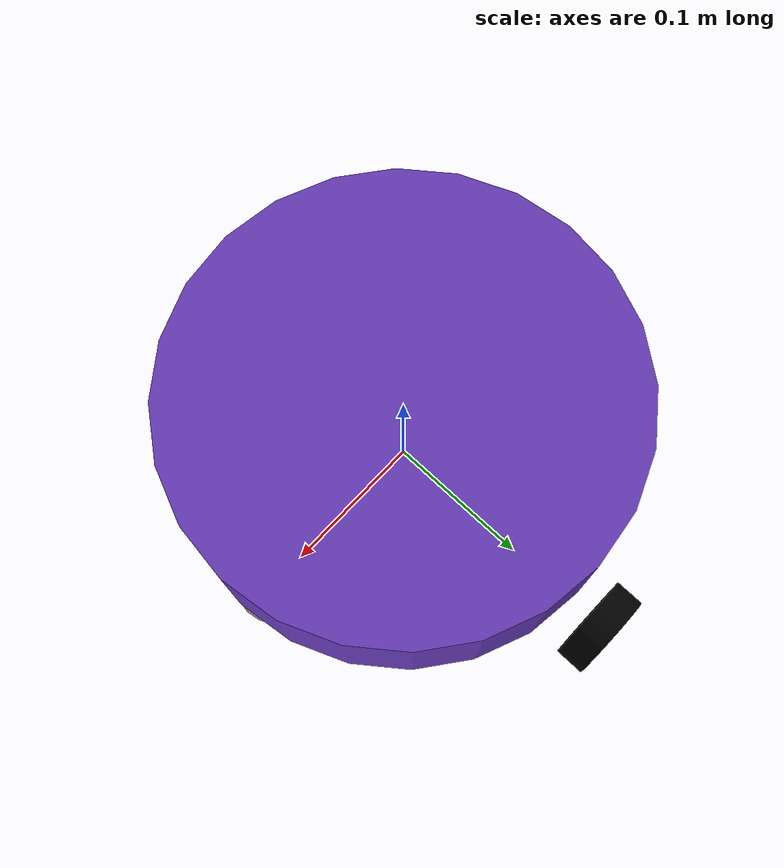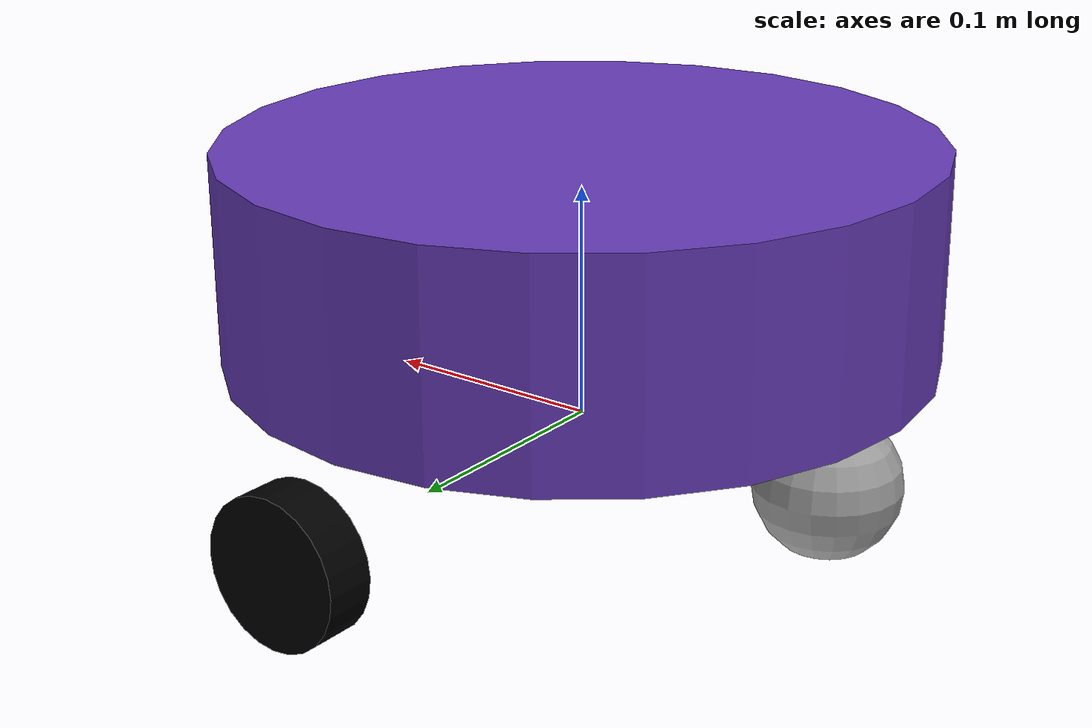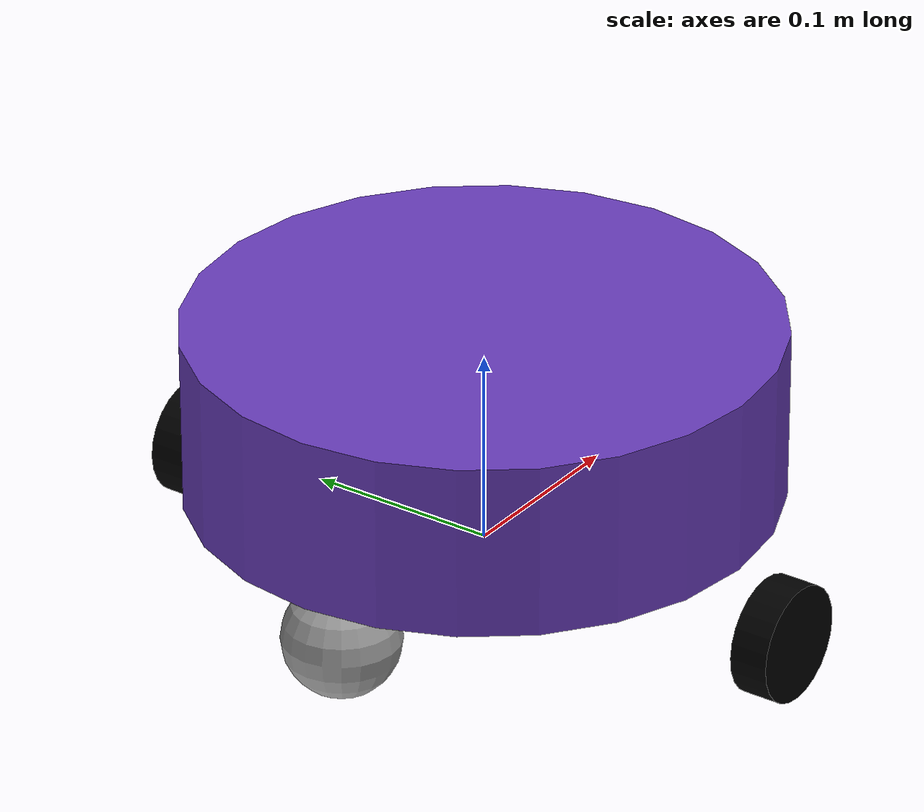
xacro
<?xml version="1.0"?>
<robot xmlns:xacro="http://www.ros.org/wiki/xacro" >

      <xacro:include filename="inertial_macros.xacro" />

      <!-- Base footprint -->

      <link name="base_footprint"></link>

      <joint name="base_footprint_joint" type="fixed">
        <origin xyz="0 0 0" rpy="0 0 0"/>
        <parent link="base_footprint"/>
        <child link="base_link"/>
      </joint>

      <!-- Base link -->

      <link name="base_link">
         <pose>0 0 0.1 0 0 0</pose>

      </link>

      <!-- Chassis link -->

      <joint name="chassis_joint" type="fixed">
        <parent link="base_link"/>
        <child link="chassis"/>
        <origin xyz="0 0 0"/>
      </joint>

      <link name="chassis">
         <visual>
            <origin xyz="0 0 0.075"/>
            <geometry>
               <cylinder radius="0.15" length="0.09"/>
            </geometry>
            <material name="chassis_material">
               <color rgba="0.40 0.23 0.72 1.0"/>
            </material>
         </visual>
         <collision>
            <origin xyz="0 0 0.075"/>
            <geometry>
               <cylinder radius="0.15" length="0.09"/>
            </geometry>
         </collision>
         <xacro:inertial_cylinder mass="0.5" length="0.09" radius="0.15">
            <origin xyz="0 0 0.075" rpy="0 0 0"/>
         </xacro:inertial_cylinder>
      </link>

      <!-- Left wheel link -->
      <joint name="left_wheel_joint" type="continuous">
        <parent link="base_link"/>
        <child link="left_wheel"/>
        <origin xyz="0 0.175 0" rpy="-${pi/2} 0 0"/>
        <axis xyz="0 0 1"/>
      </joint>

      <link name="left_wheel">
         <visual>
            <geometry>
               <cylinder radius="0.03" length="0.02"/>
            </geometry>
            <material name="wheel_material">
               <color rgba="0.0 0.0 0.0 1.0"/>
            </material>
         </visual>
         <collision>
            <geometry>
               <cylinder radius="0.03" length="0.02"/>
            </geometry>
         </collision>
         <xacro:inertial_cylinder mass="0.1" length="0.02" radius="0.03">
            <origin xyz="0 0 0" rpy="0 0 0"/>
         </xacro:inertial_cylinder>
      </link>

      <!-- Right wheel link -->
      <joint name="right_wheel_joint" type="continuous">
        <parent link="base_link"/>
        <child link="right_wheel"/>
        <origin xyz="0 -0.175 0" rpy="${pi/2} 0 0"/>
        <axis xyz="0 0 -1"/>
      </joint>

      <link name="right_wheel">
         <visual>
            <geometry>
               <cylinder radius="0.03" length="0.02"/>
            </geometry>
            <material name="wheel_material">
                <color rgba="0.0 0.0 0.0 1.0"/>
            </material>
         </visual>
         <collision>
            <geometry>
               <cylinder radius="0.03" length="0.02"/>
            </geometry>
         </collision>
            <xacro:inertial_cylinder mass="0.1" length="0.02" radius="0.03">
            <origin xyz="0 0 0" rpy="0 0 0"/>
         </xacro:inertial_cylinder>
      </link>

      <!-- Castor wheel link -->
      <joint name="castor_wheel_joint2" type="fixed">
        <parent link="chassis"/>
        <child link="castor_wheel2"/>
        <origin xyz="-0.12 0 0"/>
      </joint>

      <link name="castor_wheel2">
         <visual>
            <geometry>
               <sphere radius="0.03"/>
            </geometry>
            <material name="castor_material">
                <color rgba="0.62 0.62 0.62 1.0"/>
            </material>
         </visual>
         <collision>
            <geometry>
               <sphere radius="0.03"/>
            </geometry>
         </collision>
         <xacro:inertial_sphere mass="0.1" radius="0.03">
            <origin xyz="0 0 0" rpy="0 0 0"/>
         </xacro:inertial_sphere>
      </link>

      <joint name="castor_wheel_joint1" type="fixed">
        <parent link="chassis"/>
        <child link="castor_wheel1"/>
        <origin xyz="0.12 0 0"/>
      </joint>

     <link name="castor_wheel1">
         <visual>
            <geometry>
               <sphere radius="0.03"/>
            </geometry>
            <material name="castor_material">
                <color rgba="0.62 0.62 0.62 1.0"/>
            </material>
         </visual>
         <collision>
            <geometry>
               <sphere radius="0.03"/>
            </geometry>
         </collision>
         <xacro:inertial_sphere mass="0.1" radius="0.03">
            <origin xyz="0 0 0" rpy="0 0 0"/>
         </xacro:inertial_sphere>
      </link>

      <!-- IMU -->
      <joint name="imu_joint" type="fixed">
        <parent link="base_link"/>
        <child link="imu_link"/>
        <origin xyz="0 0 0" rpy="0 0 0"/>
      </joint>

      <link name="imu_link">
      </link>

      <gazebo reference="imu_link">
        <sensor name="imu" type="imu">
            <always_on>1</always_on>
            <visualize>true</visualize>
            <update_rate>20</update_rate>
            <topic>imu</topic>
            <enable_metrics>true</enable_metrics>
            <gz_frame_id>imu_link</gz_frame_id>
        </sensor>
      </gazebo>

      <!-- Camera link -->
      <joint name="camera_joint" type="fixed">
        <parent link="base_link"/>
        <child link="camera_link"/>
        <origin xyz="0.10 0 0.075" rpy="0 0 0"/>
      </joint>

      <link name='camera_link'>
         <pose>0 0 0 0 0 0</pose>
         <inertial>
            <mass value="0.1"/>
            <origin xyz="0 0 0" rpy="0 0 0"/>
            <inertia
               ixx="1e-6" ixy="0" ixz="0"
               iyy="1e-6" iyz="0"
               izz="1e-6"
            />
         </inertial>

         <collision name='collision'>
            <origin xyz="0 0 0" rpy="0 0 0"/>
            <geometry>
            <box size=".03 .03 .03"/>
            </geometry>
         </collision>

         <visual name='camera_link_visual'>
            <origin xyz="0 0 0" rpy="0 0 0"/>
            <geometry>
            <box size=".03 .03 .03"/>
            </geometry>
         </visual>

      </link>

      <gazebo reference="camera_link">
        <material>Gazebo/Red</material>
      </gazebo>

      <joint type="fixed" name="camera_optical_joint">
         <origin xyz="0 0 0" rpy="-1.5707 0 -1.5707"/>
         <child link="camera_link_optical"/>
         <parent link="camera_link"/>
      </joint>

      <link name="camera_link_optical">
      </link>

      <!-- Gazebo Parameters -->
      <gazebo reference="chassis_link">
         <mu1>1.0</mu1>
         <mu2>1.0</mu2>
      </gazebo>

      <gazebo reference="right_wheel">
         <mu1>1.0</mu1>
         <mu2>1.0</mu2>
      </gazebo>

      <gazebo reference="left_wheel">
         <mu1>1.0</mu1>
         <mu2>1.0</mu2>
      </gazebo>

      <gazebo reference="castor_wheel1">
         <mu1>0.0001</mu1>
         <mu2>0.0001</mu2>
      </gazebo>

      <gazebo reference="castor_wheel2">
         <mu1>0.0001</mu1>
         <mu2>0.0001</mu2>
      </gazebo>

</robot>
